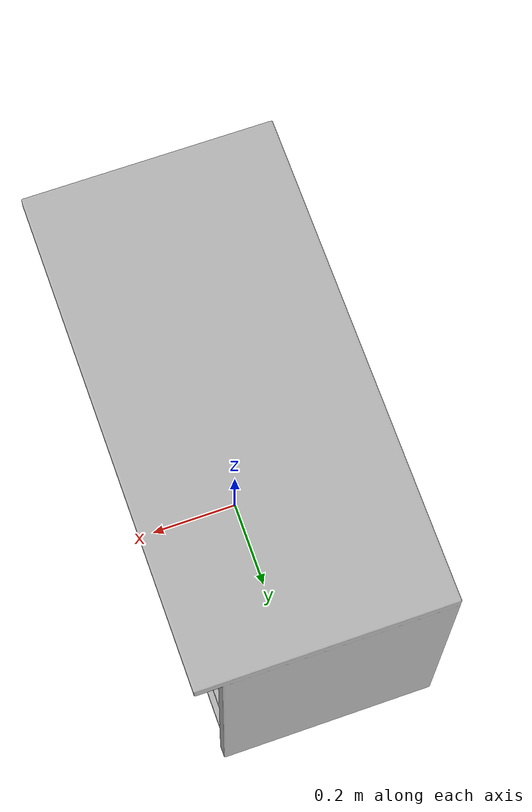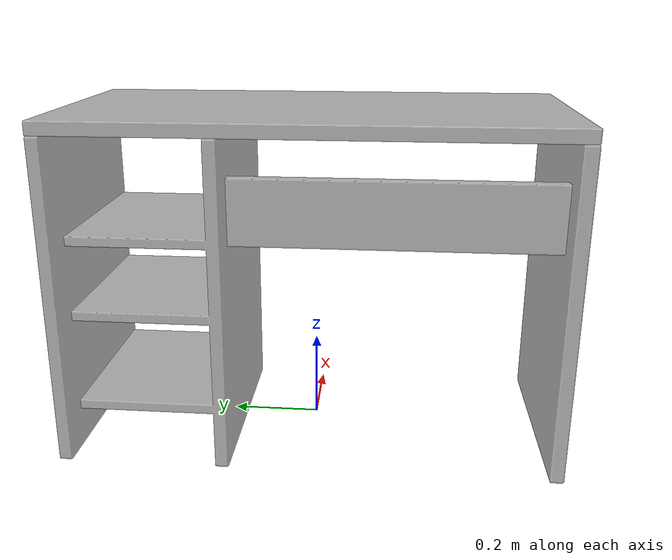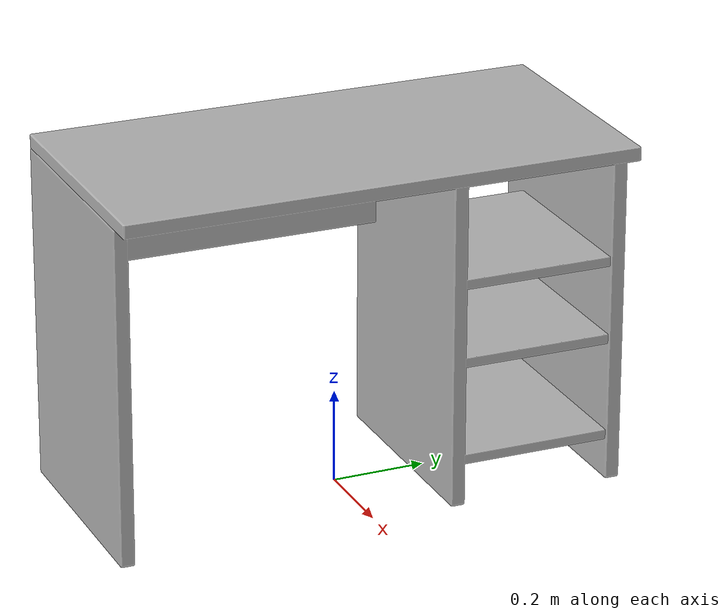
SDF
<?xml version='1.0'?>
<sdf version='1.4'>
  <model name='105'>
    <pose>0 0 0 0 0 0</pose>
    <static>true</static>
    <link name='link'>
      <collision name='collision'>
        <pose>0 0 0 0 0 0</pose>
        <geometry>
          <box>
            <size>0.55 1.1 2</size>
          </box>
        </geometry>
      </collision>
      <visual name='visual'>
        <pose>0 0 0 0 0 0</pose>
        <geometry>
          <mesh><uri>model://105/105.dae</uri></mesh>
        </geometry>
      </visual>
    </link>
  </model>
</sdf>
